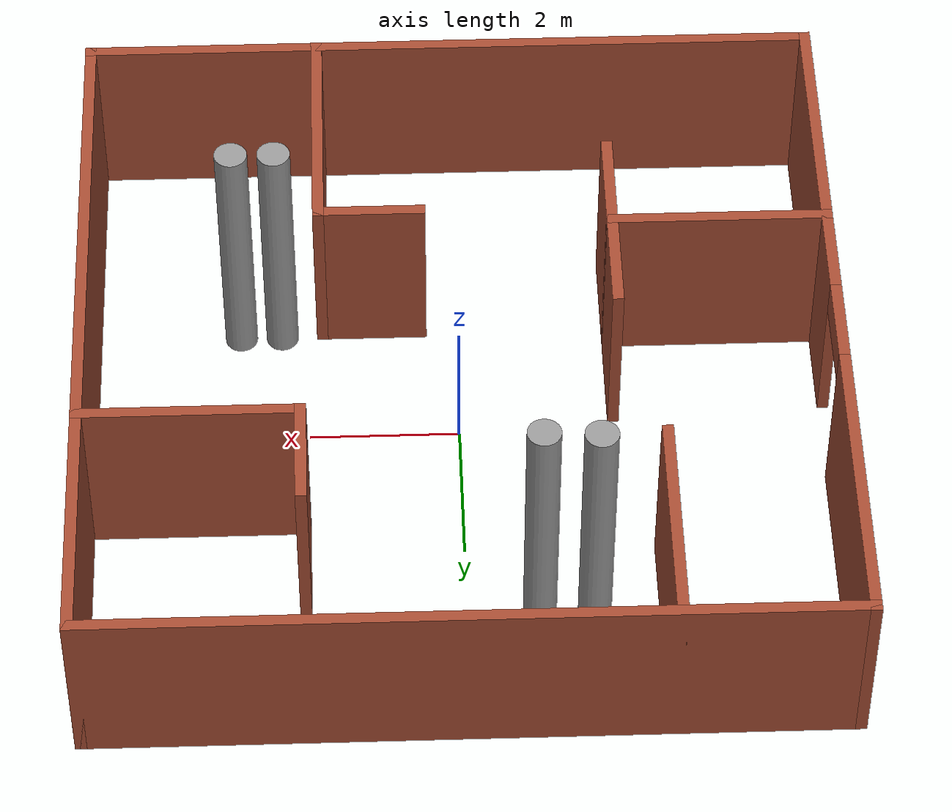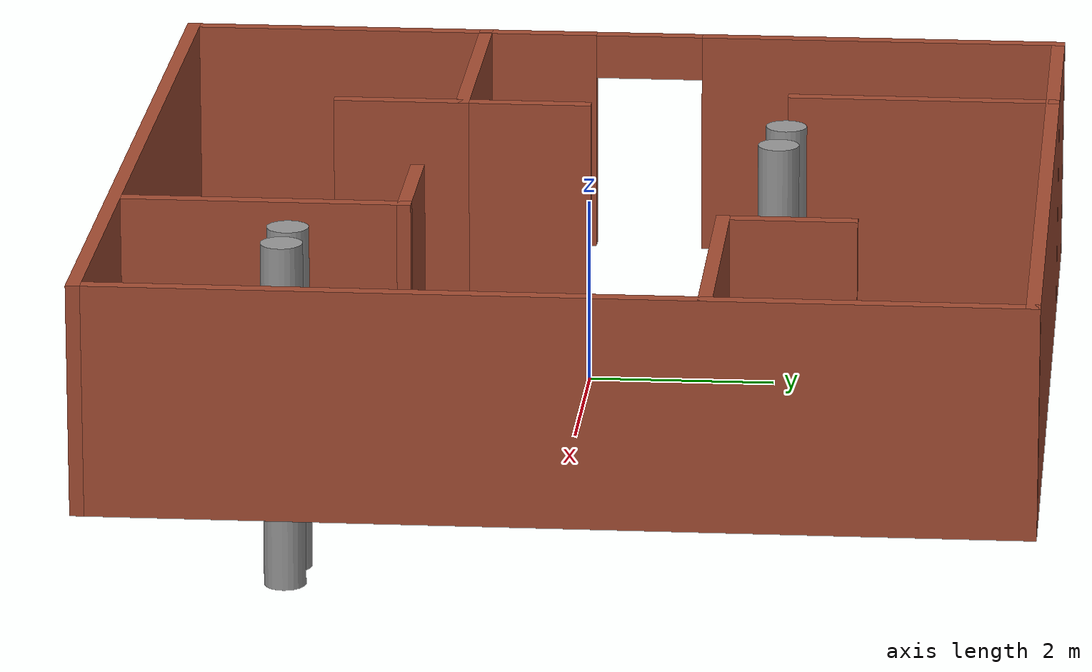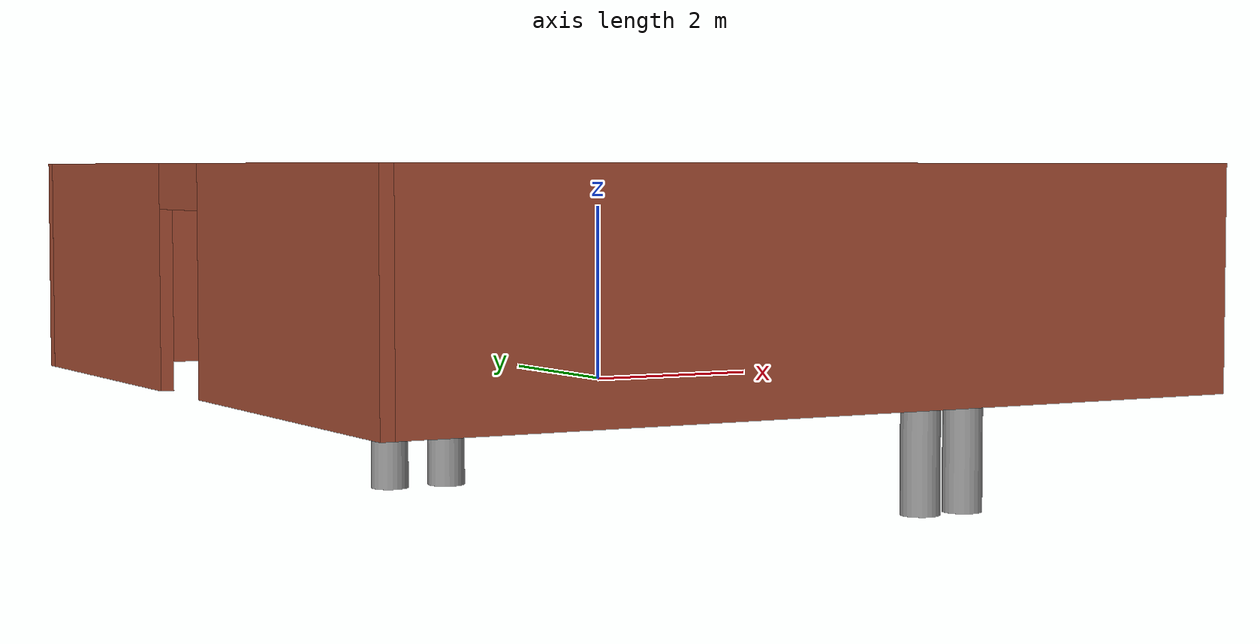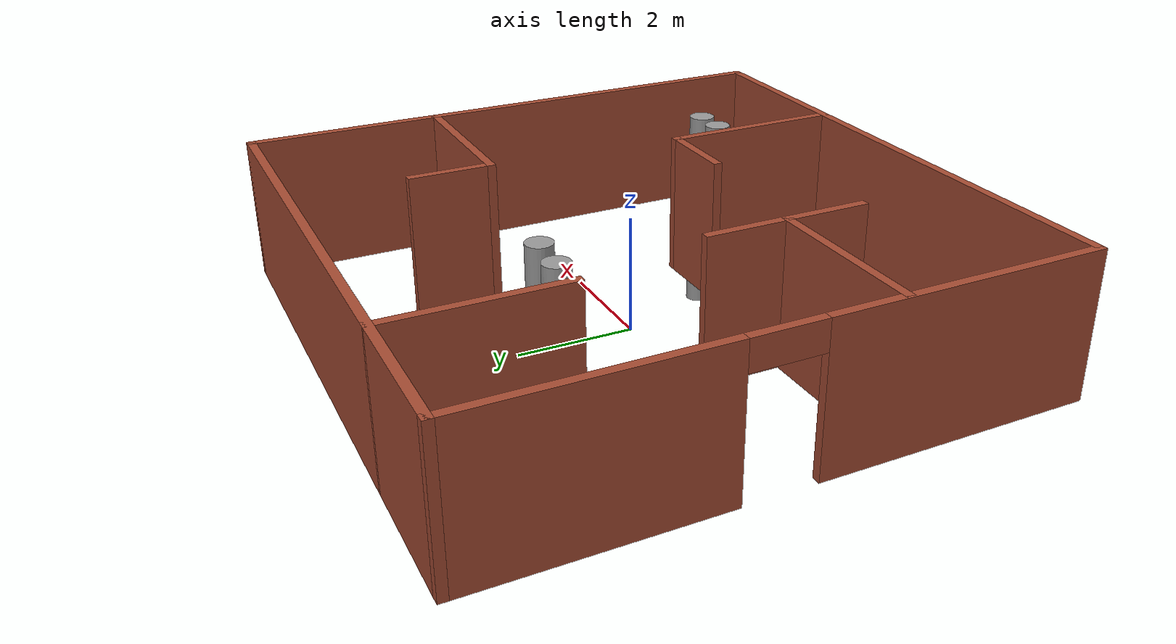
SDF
<?xml version='1.0'?>
<sdf version='1.5'>
  <model name='house_2'>
    <link name='Wall_0'>
      <pose frame=''>-4.925 0 0 0 0 -1.5708</pose>
      <self_collide>0</self_collide>
      <kinematic>0</kinematic>
      <visual name='Wall_0_Visual_0'>
        <pose frame=''>-2.94608 0 1.25 0 -0 0</pose>
        <geometry>
          <box>
            <size>4.10785 0.15 2.5</size>
          </box>
        </geometry>
        <material>
          <script>
            <uri>file://media/materials/scripts/gazebo.material</uri>
            <name>Gazebo/Bricks</name>
          </script>
          <ambient>1 1 1 1</ambient>
          <diffuse>1 1 1 1</diffuse>
          <specular>0.2 0.2 0.2 1</specular>
          <emissive>0 0 0 1</emissive>
          <shader type='pixel'/>
        </material>
        <cast_shadows>1</cast_shadows>
        <transparency>0</transparency>
      </visual>
      <visual name='Wall_0_Visual_1'>
        <pose frame=''>2.65392 0 1.25 0 -0 0</pose>
        <geometry>
          <box>
            <size>4.69215 0.15 2.5</size>
          </box>
        </geometry>
        <material>
          <script>
            <uri>file://media/materials/scripts/gazebo.material</uri>
            <name>Gazebo/Bricks</name>
          </script>
          <ambient>1 1 1 1</ambient>
          <diffuse>1 1 1 1</diffuse>
          <specular>0.2 0.2 0.2 1</specular>
          <emissive>0 0 0 1</emissive>
          <shader type='pixel'/>
        </material>
        <cast_shadows>1</cast_shadows>
        <transparency>0</transparency>
      </visual>
      <visual name='Wall_0_Visual_2'>
        <pose frame=''>-0.292154 0 2.25 0 -0 0</pose>
        <geometry>
          <box>
            <size>1.2 0.15 0.5</size>
          </box>
        </geometry>
        <material>
          <script>
            <uri>file://media/materials/scripts/gazebo.material</uri>
            <name>Gazebo/Bricks</name>
          </script>
          <ambient>1 1 1 1</ambient>
          <diffuse>1 1 1 1</diffuse>
          <specular>0.2 0.2 0.2 1</specular>
          <emissive>0 0 0 1</emissive>
          <shader type='pixel'/>
        </material>
        <cast_shadows>1</cast_shadows>
        <transparency>0</transparency>
      </visual>
      <collision name='Wall_0_Collision_0'>
        <laser_retro>0</laser_retro>
        <max_contacts>10</max_contacts>
        <pose frame=''>-2.94608 0 1.25 0 -0 0</pose>
        <geometry>
          <box>
            <size>4.10785 0.15 2.5</size>
          </box>
        </geometry>
        <surface>
          <friction>
            <ode>
              <mu>1</mu>
              <mu2>1</mu2>
              <fdir1>0 0 0</fdir1>
              <slip1>0</slip1>
              <slip2>0</slip2>
            </ode>
          </friction>
          <bounce>
            <restitution_coefficient>0</restitution_coefficient>
            <threshold>1e+06</threshold>
          </bounce>
          <contact>
            <collide_without_contact>0</collide_without_contact>
            <collide_without_contact_bitmask>1</collide_without_contact_bitmask>
            <collide_bitmask>1</collide_bitmask>
            <ode>
              <soft_cfm>0</soft_cfm>
              <soft_erp>0.2</soft_erp>
              <kp>1e+13</kp>
              <kd>1</kd>
              <max_vel>0.01</max_vel>
              <min_depth>0</min_depth>
            </ode>
            <bullet>
              <split_impulse>1</split_impulse>
              <split_impulse_penetration_threshold>-0.01</split_impulse_penetration_threshold>
              <soft_cfm>0</soft_cfm>
              <soft_erp>0.2</soft_erp>
              <kp>1e+13</kp>
              <kd>1</kd>
            </bullet>
          </contact>
        </surface>
      </collision>
      <collision name='Wall_0_Collision_1'>
        <laser_retro>0</laser_retro>
        <max_contacts>10</max_contacts>
        <pose frame=''>2.65392 0 1.25 0 -0 0</pose>
        <geometry>
          <box>
            <size>4.69215 0.15 2.5</size>
          </box>
        </geometry>
        <surface>
          <friction>
            <ode>
              <mu>1</mu>
              <mu2>1</mu2>
              <fdir1>0 0 0</fdir1>
              <slip1>0</slip1>
              <slip2>0</slip2>
            </ode>
          </friction>
          <bounce>
            <restitution_coefficient>0</restitution_coefficient>
            <threshold>1e+06</threshold>
          </bounce>
          <contact>
            <collide_without_contact>0</collide_without_contact>
            <collide_without_contact_bitmask>1</collide_without_contact_bitmask>
            <collide_bitmask>1</collide_bitmask>
            <ode>
              <soft_cfm>0</soft_cfm>
              <soft_erp>0.2</soft_erp>
              <kp>1e+13</kp>
              <kd>1</kd>
              <max_vel>0.01</max_vel>
              <min_depth>0</min_depth>
            </ode>
            <bullet>
              <split_impulse>1</split_impulse>
              <split_impulse_penetration_threshold>-0.01</split_impulse_penetration_threshold>
              <soft_cfm>0</soft_cfm>
              <soft_erp>0.2</soft_erp>
              <kp>1e+13</kp>
              <kd>1</kd>
            </bullet>
          </contact>
        </surface>
      </collision>
      <collision name='Wall_0_Collision_2'>
        <laser_retro>0</laser_retro>
        <max_contacts>10</max_contacts>
        <pose frame=''>-0.292154 0 2.25 0 -0 0</pose>
        <geometry>
          <box>
            <size>1.2 0.15 0.5</size>
          </box>
        </geometry>
        <surface>
          <friction>
            <ode>
              <mu>1</mu>
              <mu2>1</mu2>
              <fdir1>0 0 0</fdir1>
              <slip1>0</slip1>
              <slip2>0</slip2>
            </ode>
          </friction>
          <bounce>
            <restitution_coefficient>0</restitution_coefficient>
            <threshold>1e+06</threshold>
          </bounce>
          <contact>
            <collide_without_contact>0</collide_without_contact>
            <collide_without_contact_bitmask>1</collide_without_contact_bitmask>
            <collide_bitmask>1</collide_bitmask>
            <ode>
              <soft_cfm>0</soft_cfm>
              <soft_erp>0.2</soft_erp>
              <kp>1e+13</kp>
              <kd>1</kd>
              <max_vel>0.01</max_vel>
              <min_depth>0</min_depth>
            </ode>
            <bullet>
              <split_impulse>1</split_impulse>
              <split_impulse_penetration_threshold>-0.01</split_impulse_penetration_threshold>
              <soft_cfm>0</soft_cfm>
              <soft_erp>0.2</soft_erp>
              <kp>1e+13</kp>
              <kd>1</kd>
            </bullet>
          </contact>
        </surface>
      </collision>
    </link>
    <link name='Wall_14'>
      <pose frame=''>-2.575 3.5 0 0 0 -1.5708</pose>
      <self_collide>0</self_collide>
      <kinematic>0</kinematic>
      <visual name='Wall_14_Visual'>
        <pose frame=''>0 0 1.25 0 -0 0</pose>
        <geometry>
          <box>
            <size>3 0.15 2.5</size>
          </box>
        </geometry>
        <material>
          <script>
            <uri>file://media/materials/scripts/gazebo.material</uri>
            <name>Gazebo/Bricks</name>
          </script>
          <ambient>1 1 1 1</ambient>
          <diffuse>1 1 1 1</diffuse>
          <specular>0.2 0.2 0.2 1</specular>
          <emissive>0 0 0 1</emissive>
          <shader type='pixel'/>
        </material>
        <cast_shadows>1</cast_shadows>
        <transparency>0</transparency>
      </visual>
      <collision name='Wall_14_Collision'>
        <laser_retro>0</laser_retro>
        <max_contacts>10</max_contacts>
        <pose frame=''>0 0 1.25 0 -0 0</pose>
        <geometry>
          <box>
            <size>3 0.15 2.5</size>
          </box>
        </geometry>
        <surface>
          <friction>
            <ode>
              <mu>1</mu>
              <mu2>1</mu2>
              <fdir1>0 0 0</fdir1>
              <slip1>0</slip1>
              <slip2>0</slip2>
            </ode>
          </friction>
          <bounce>
            <restitution_coefficient>0</restitution_coefficient>
            <threshold>1e+06</threshold>
          </bounce>
          <contact>
            <collide_without_contact>0</collide_without_contact>
            <collide_without_contact_bitmask>1</collide_without_contact_bitmask>
            <collide_bitmask>1</collide_bitmask>
            <ode>
              <soft_cfm>0</soft_cfm>
              <soft_erp>0.2</soft_erp>
              <kp>1e+13</kp>
              <kd>1</kd>
              <max_vel>0.01</max_vel>
              <min_depth>0</min_depth>
            </ode>
            <bullet>
              <split_impulse>1</split_impulse>
              <split_impulse_penetration_threshold>-0.01</split_impulse_penetration_threshold>
              <soft_cfm>0</soft_cfm>
              <soft_erp>0.2</soft_erp>
              <kp>1e+13</kp>
              <kd>1</kd>
            </bullet>
          </contact>
        </surface>
      </collision>
    </link>
    <link name='Wall_17'>
      <pose frame=''>3.5 1.575 0 0 -0 3.14159</pose>
      <self_collide>0</self_collide>
      <kinematic>0</kinematic>
      <visual name='Wall_17_Visual'>
        <pose frame=''>0 0 1.25 0 -0 0</pose>
        <geometry>
          <box>
            <size>3 0.15 2.5</size>
          </box>
        </geometry>
        <material>
          <script>
            <uri>file://media/materials/scripts/gazebo.material</uri>
            <name>Gazebo/Bricks</name>
          </script>
          <ambient>1 1 1 1</ambient>
          <diffuse>1 1 1 1</diffuse>
          <specular>0.2 0.2 0.2 1</specular>
          <emissive>0 0 0 1</emissive>
          <shader type='pixel'/>
        </material>
        <cast_shadows>1</cast_shadows>
        <transparency>0</transparency>
      </visual>
      <collision name='Wall_17_Collision'>
        <laser_retro>0</laser_retro>
        <max_contacts>10</max_contacts>
        <pose frame=''>0 0 1.25 0 -0 0</pose>
        <geometry>
          <box>
            <size>3 0.15 2.5</size>
          </box>
        </geometry>
        <surface>
          <friction>
            <ode>
              <mu>1</mu>
              <mu2>1</mu2>
              <fdir1>0 0 0</fdir1>
              <slip1>0</slip1>
              <slip2>0</slip2>
            </ode>
          </friction>
          <bounce>
            <restitution_coefficient>0</restitution_coefficient>
            <threshold>1e+06</threshold>
          </bounce>
          <contact>
            <collide_without_contact>0</collide_without_contact>
            <collide_without_contact_bitmask>1</collide_without_contact_bitmask>
            <collide_bitmask>1</collide_bitmask>
            <ode>
              <soft_cfm>0</soft_cfm>
              <soft_erp>0.2</soft_erp>
              <kp>1e+13</kp>
              <kd>1</kd>
              <max_vel>0.01</max_vel>
              <min_depth>0</min_depth>
            </ode>
            <bullet>
              <split_impulse>1</split_impulse>
              <split_impulse_penetration_threshold>-0.01</split_impulse_penetration_threshold>
              <soft_cfm>0</soft_cfm>
              <soft_erp>0.2</soft_erp>
              <kp>1e+13</kp>
              <kd>1</kd>
            </bullet>
          </contact>
        </surface>
      </collision>
    </link>
    <link name='Wall_2'>
      <pose frame=''>0 4.925 0 0 -0 0</pose>
      <self_collide>0</self_collide>
      <kinematic>0</kinematic>
      <visual name='Wall_2_Visual'>
        <pose frame=''>0 0 1.25 0 -0 0</pose>
        <geometry>
          <box>
            <size>10 0.15 2.5</size>
          </box>
        </geometry>
        <material>
          <script>
            <uri>file://media/materials/scripts/gazebo.material</uri>
            <name>Gazebo/Bricks</name>
          </script>
          <ambient>1 1 1 1</ambient>
          <diffuse>1 1 1 1</diffuse>
          <specular>0.2 0.2 0.2 1</specular>
          <emissive>0 0 0 1</emissive>
          <shader type='pixel'/>
        </material>
        <cast_shadows>1</cast_shadows>
        <transparency>0</transparency>
      </visual>
      <collision name='Wall_2_Collision'>
        <laser_retro>0</laser_retro>
        <max_contacts>10</max_contacts>
        <pose frame=''>0 0 1.25 0 -0 0</pose>
        <geometry>
          <box>
            <size>10 0.15 2.5</size>
          </box>
        </geometry>
        <surface>
          <friction>
            <ode>
              <mu>1</mu>
              <mu2>1</mu2>
              <fdir1>0 0 0</fdir1>
              <slip1>0</slip1>
              <slip2>0</slip2>
            </ode>
          </friction>
          <bounce>
            <restitution_coefficient>0</restitution_coefficient>
            <threshold>1e+06</threshold>
          </bounce>
          <contact>
            <collide_without_contact>0</collide_without_contact>
            <collide_without_contact_bitmask>1</collide_without_contact_bitmask>
            <collide_bitmask>1</collide_bitmask>
            <ode>
              <soft_cfm>0</soft_cfm>
              <soft_erp>0.2</soft_erp>
              <kp>1e+13</kp>
              <kd>1</kd>
              <max_vel>0.01</max_vel>
              <min_depth>0</min_depth>
            </ode>
            <bullet>
              <split_impulse>1</split_impulse>
              <split_impulse_penetration_threshold>-0.01</split_impulse_penetration_threshold>
              <soft_cfm>0</soft_cfm>
              <soft_erp>0.2</soft_erp>
              <kp>1e+13</kp>
              <kd>1</kd>
            </bullet>
          </contact>
        </surface>
      </collision>
    </link>
    <link name='Wall_23'>
      <pose frame=''>-3.5 -1.575 0 0 -0 0</pose>
      <self_collide>0</self_collide>
      <kinematic>0</kinematic>
      <visual name='Wall_23_Visual'>
        <pose frame=''>0 0 1.25 0 -0 0</pose>
        <geometry>
          <box>
            <size>3 0.15 2.5</size>
          </box>
        </geometry>
        <material>
          <script>
            <uri>file://media/materials/scripts/gazebo.material</uri>
            <name>Gazebo/Bricks</name>
          </script>
          <ambient>1 1 1 1</ambient>
          <diffuse>1 1 1 1</diffuse>
          <specular>0.2 0.2 0.2 1</specular>
          <emissive>0 0 0 1</emissive>
          <shader type='pixel'/>
        </material>
        <cast_shadows>1</cast_shadows>
        <transparency>0</transparency>
      </visual>
      <collision name='Wall_23_Collision'>
        <laser_retro>0</laser_retro>
        <max_contacts>10</max_contacts>
        <pose frame=''>0 0 1.25 0 -0 0</pose>
        <geometry>
          <box>
            <size>3 0.15 2.5</size>
          </box>
        </geometry>
        <surface>
          <friction>
            <ode>
              <mu>1</mu>
              <mu2>1</mu2>
              <fdir1>0 0 0</fdir1>
              <slip1>0</slip1>
              <slip2>0</slip2>
            </ode>
          </friction>
          <bounce>
            <restitution_coefficient>0</restitution_coefficient>
            <threshold>1e+06</threshold>
          </bounce>
          <contact>
            <collide_without_contact>0</collide_without_contact>
            <collide_without_contact_bitmask>1</collide_without_contact_bitmask>
            <collide_bitmask>1</collide_bitmask>
            <ode>
              <soft_cfm>0</soft_cfm>
              <soft_erp>0.2</soft_erp>
              <kp>1e+13</kp>
              <kd>1</kd>
              <max_vel>0.01</max_vel>
              <min_depth>0</min_depth>
            </ode>
            <bullet>
              <split_impulse>1</split_impulse>
              <split_impulse_penetration_threshold>-0.01</split_impulse_penetration_threshold>
              <soft_cfm>0</soft_cfm>
              <soft_erp>0.2</soft_erp>
              <kp>1e+13</kp>
              <kd>1</kd>
            </bullet>
          </contact>
        </surface>
      </collision>
    </link>
    <link name='Wall_25'>
      <pose frame=''>2.075 2.25 0 0 -0 1.5708</pose>
      <self_collide>0</self_collide>
      <kinematic>0</kinematic>
      <visual name='Wall_25_Visual'>
        <pose frame=''>0 0 1.25 0 -0 0</pose>
        <geometry>
          <box>
            <size>1.5 0.15 2.5</size>
          </box>
        </geometry>
        <material>
          <script>
            <uri>file://media/materials/scripts/gazebo.material</uri>
            <name>Gazebo/Bricks</name>
          </script>
          <ambient>1 1 1 1</ambient>
          <diffuse>1 1 1 1</diffuse>
          <specular>0.2 0.2 0.2 1</specular>
          <emissive>0 0 0 1</emissive>
          <shader type='pixel'/>
        </material>
        <cast_shadows>1</cast_shadows>
        <transparency>0</transparency>
      </visual>
      <collision name='Wall_25_Collision'>
        <laser_retro>0</laser_retro>
        <max_contacts>10</max_contacts>
        <pose frame=''>0 0 1.25 0 -0 0</pose>
        <geometry>
          <box>
            <size>1.5 0.15 2.5</size>
          </box>
        </geometry>
        <surface>
          <friction>
            <ode>
              <mu>1</mu>
              <mu2>1</mu2>
              <fdir1>0 0 0</fdir1>
              <slip1>0</slip1>
              <slip2>0</slip2>
            </ode>
          </friction>
          <bounce>
            <restitution_coefficient>0</restitution_coefficient>
            <threshold>1e+06</threshold>
          </bounce>
          <contact>
            <collide_without_contact>0</collide_without_contact>
            <collide_without_contact_bitmask>1</collide_without_contact_bitmask>
            <collide_bitmask>1</collide_bitmask>
            <ode>
              <soft_cfm>0</soft_cfm>
              <soft_erp>0.2</soft_erp>
              <kp>1e+13</kp>
              <kd>1</kd>
              <max_vel>0.01</max_vel>
              <min_depth>0</min_depth>
            </ode>
            <bullet>
              <split_impulse>1</split_impulse>
              <split_impulse_penetration_threshold>-0.01</split_impulse_penetration_threshold>
              <soft_cfm>0</soft_cfm>
              <soft_erp>0.2</soft_erp>
              <kp>1e+13</kp>
              <kd>1</kd>
            </bullet>
          </contact>
        </surface>
      </collision>
    </link>
    <link name='Wall_27'>
      <pose frame=''>-2.075 -2.25 0 0 0 -1.5708</pose>
      <self_collide>0</self_collide>
      <kinematic>0</kinematic>
      <visual name='Wall_27_Visual'>
        <pose frame=''>0 0 1.25 0 -0 0</pose>
        <geometry>
          <box>
            <size>1.5 0.15 2.5</size>
          </box>
        </geometry>
        <material>
          <script>
            <uri>file://media/materials/scripts/gazebo.material</uri>
            <name>Gazebo/Bricks</name>
          </script>
          <ambient>1 1 1 1</ambient>
          <diffuse>1 1 1 1</diffuse>
          <specular>0.2 0.2 0.2 1</specular>
          <emissive>0 0 0 1</emissive>
          <shader type='pixel'/>
        </material>
        <cast_shadows>1</cast_shadows>
        <transparency>0</transparency>
      </visual>
      <collision name='Wall_27_Collision'>
        <laser_retro>0</laser_retro>
        <max_contacts>10</max_contacts>
        <pose frame=''>0 0 1.25 0 -0 0</pose>
        <geometry>
          <box>
            <size>1.5 0.15 2.5</size>
          </box>
        </geometry>
        <surface>
          <friction>
            <ode>
              <mu>1</mu>
              <mu2>1</mu2>
              <fdir1>0 0 0</fdir1>
              <slip1>0</slip1>
              <slip2>0</slip2>
            </ode>
          </friction>
          <bounce>
            <restitution_coefficient>0</restitution_coefficient>
            <threshold>1e+06</threshold>
          </bounce>
          <contact>
            <collide_without_contact>0</collide_without_contact>
            <collide_without_contact_bitmask>1</collide_without_contact_bitmask>
            <collide_bitmask>1</collide_bitmask>
            <ode>
              <soft_cfm>0</soft_cfm>
              <soft_erp>0.2</soft_erp>
              <kp>1e+13</kp>
              <kd>1</kd>
              <max_vel>0.01</max_vel>
              <min_depth>0</min_depth>
            </ode>
            <bullet>
              <split_impulse>1</split_impulse>
              <split_impulse_penetration_threshold>-0.01</split_impulse_penetration_threshold>
              <soft_cfm>0</soft_cfm>
              <soft_erp>0.2</soft_erp>
              <kp>1e+13</kp>
              <kd>1</kd>
            </bullet>
          </contact>
        </surface>
      </collision>
    </link>
    <link name='Wall_3'>
      <pose frame=''>4.925 0 0 0 0 -1.5708</pose>
      <self_collide>0</self_collide>
      <kinematic>0</kinematic>
      <visual name='Wall_3_Visual'>
        <pose frame=''>0 0 1.25 0 -0 0</pose>
        <geometry>
          <box>
            <size>10 0.15 2.5</size>
          </box>
        </geometry>
        <material>
          <script>
            <uri>file://media/materials/scripts/gazebo.material</uri>
            <name>Gazebo/Bricks</name>
          </script>
          <ambient>1 1 1 1</ambient>
          <diffuse>1 1 1 1</diffuse>
          <specular>0.2 0.2 0.2 1</specular>
          <emissive>0 0 0 1</emissive>
          <shader type='pixel'/>
        </material>
        <cast_shadows>1</cast_shadows>
        <transparency>0</transparency>
      </visual>
      <collision name='Wall_3_Collision'>
        <laser_retro>0</laser_retro>
        <max_contacts>10</max_contacts>
        <pose frame=''>0 0 1.25 0 -0 0</pose>
        <geometry>
          <box>
            <size>10 0.15 2.5</size>
          </box>
        </geometry>
        <surface>
          <friction>
            <ode>
              <mu>1</mu>
              <mu2>1</mu2>
              <fdir1>0 0 0</fdir1>
              <slip1>0</slip1>
              <slip2>0</slip2>
            </ode>
          </friction>
          <bounce>
            <restitution_coefficient>0</restitution_coefficient>
            <threshold>1e+06</threshold>
          </bounce>
          <contact>
            <collide_without_contact>0</collide_without_contact>
            <collide_without_contact_bitmask>1</collide_without_contact_bitmask>
            <collide_bitmask>1</collide_bitmask>
            <ode>
              <soft_cfm>0</soft_cfm>
              <soft_erp>0.2</soft_erp>
              <kp>1e+13</kp>
              <kd>1</kd>
              <max_vel>0.01</max_vel>
              <min_depth>0</min_depth>
            </ode>
            <bullet>
              <split_impulse>1</split_impulse>
              <split_impulse_penetration_threshold>-0.01</split_impulse_penetration_threshold>
              <soft_cfm>0</soft_cfm>
              <soft_erp>0.2</soft_erp>
              <kp>1e+13</kp>
              <kd>1</kd>
            </bullet>
          </contact>
        </surface>
      </collision>
    </link>
    <link name='Wall_36'>
      <pose frame=''>-2.075 -0.9 0 0 -0 1.5708</pose>
      <self_collide>0</self_collide>
      <kinematic>0</kinematic>
      <visual name='Wall_36_Visual'>
        <pose frame=''>0 0 1.25 0 -0 0</pose>
        <geometry>
          <box>
            <size>1.5 0.15 2.5</size>
          </box>
        </geometry>
        <material>
          <script>
            <uri>file://media/materials/scripts/gazebo.material</uri>
            <name>Gazebo/Bricks</name>
          </script>
          <ambient>1 1 1 1</ambient>
          <diffuse>1 1 1 1</diffuse>
          <specular>0.2 0.2 0.2 1</specular>
          <emissive>0 0 0 1</emissive>
          <shader type='pixel'/>
        </material>
        <cast_shadows>1</cast_shadows>
        <transparency>0</transparency>
      </visual>
      <collision name='Wall_36_Collision'>
        <laser_retro>0</laser_retro>
        <max_contacts>10</max_contacts>
        <pose frame=''>0 0 1.25 0 -0 0</pose>
        <geometry>
          <box>
            <size>1.5 0.15 2.5</size>
          </box>
        </geometry>
        <surface>
          <friction>
            <ode>
              <mu>1</mu>
              <mu2>1</mu2>
              <fdir1>0 0 0</fdir1>
              <slip1>0</slip1>
              <slip2>0</slip2>
            </ode>
          </friction>
          <bounce>
            <restitution_coefficient>0</restitution_coefficient>
            <threshold>1e+06</threshold>
          </bounce>
          <contact>
            <collide_without_contact>0</collide_without_contact>
            <collide_without_contact_bitmask>1</collide_without_contact_bitmask>
            <collide_bitmask>1</collide_bitmask>
            <ode>
              <soft_cfm>0</soft_cfm>
              <soft_erp>0.2</soft_erp>
              <kp>1e+13</kp>
              <kd>1</kd>
              <max_vel>0.01</max_vel>
              <min_depth>0</min_depth>
            </ode>
            <bullet>
              <split_impulse>1</split_impulse>
              <split_impulse_penetration_threshold>-0.01</split_impulse_penetration_threshold>
              <soft_cfm>0</soft_cfm>
              <soft_erp>0.2</soft_erp>
              <kp>1e+13</kp>
              <kd>1</kd>
            </bullet>
          </contact>
        </surface>
      </collision>
    </link>
    <link name='Wall_4'>
      <pose frame=''>0 -4.925 0 0 -0 3.14159</pose>
      <self_collide>0</self_collide>
      <kinematic>0</kinematic>
      <visual name='Wall_4_Visual'>
        <pose frame=''>0 0 1.25 0 -0 0</pose>
        <geometry>
          <box>
            <size>10 0.15 2.5</size>
          </box>
        </geometry>
        <material>
          <script>
            <uri>file://media/materials/scripts/gazebo.material</uri>
            <name>Gazebo/Bricks</name>
          </script>
          <ambient>1 1 1 1</ambient>
          <diffuse>1 1 1 1</diffuse>
          <specular>0.2 0.2 0.2 1</specular>
          <emissive>0 0 0 1</emissive>
          <shader type='pixel'/>
        </material>
        <cast_shadows>1</cast_shadows>
        <transparency>0</transparency>
      </visual>
      <collision name='Wall_4_Collision'>
        <laser_retro>0</laser_retro>
        <max_contacts>10</max_contacts>
        <pose frame=''>0 0 1.25 0 -0 0</pose>
        <geometry>
          <box>
            <size>10 0.15 2.5</size>
          </box>
        </geometry>
        <surface>
          <friction>
            <ode>
              <mu>1</mu>
              <mu2>1</mu2>
              <fdir1>0 0 0</fdir1>
              <slip1>0</slip1>
              <slip2>0</slip2>
            </ode>
          </friction>
          <bounce>
            <restitution_coefficient>0</restitution_coefficient>
            <threshold>1e+06</threshold>
          </bounce>
          <contact>
            <collide_without_contact>0</collide_without_contact>
            <collide_without_contact_bitmask>1</collide_without_contact_bitmask>
            <collide_bitmask>1</collide_bitmask>
            <ode>
              <soft_cfm>0</soft_cfm>
              <soft_erp>0.2</soft_erp>
              <kp>1e+13</kp>
              <kd>1</kd>
              <max_vel>0.01</max_vel>
              <min_depth>0</min_depth>
            </ode>
            <bullet>
              <split_impulse>1</split_impulse>
              <split_impulse_penetration_threshold>-0.01</split_impulse_penetration_threshold>
              <soft_cfm>0</soft_cfm>
              <soft_erp>0.2</soft_erp>
              <kp>1e+13</kp>
              <kd>1</kd>
            </bullet>
          </contact>
        </surface>
      </collision>
    </link>
    <link name='Wall_50'>
      <pose frame=''>1.825 -3.375 0 0 -0 1.5708</pose>
      <self_collide>0</self_collide>
      <kinematic>0</kinematic>
      <visual name='Wall_50_Visual'>
        <pose frame=''>0 0 1.25 0 -0 0</pose>
        <geometry>
          <box>
            <size>3.25 0.15 2.5</size>
          </box>
        </geometry>
        <material>
          <script>
            <uri>file://media/materials/scripts/gazebo.material</uri>
            <name>Gazebo/Bricks</name>
          </script>
          <ambient>1 1 1 1</ambient>
          <diffuse>1 1 1 1</diffuse>
          <specular>0.2 0.2 0.2 1</specular>
          <emissive>0 0 0 1</emissive>
          <shader type='pixel'/>
        </material>
        <cast_shadows>1</cast_shadows>
        <transparency>0</transparency>
      </visual>
      <collision name='Wall_50_Collision'>
        <laser_retro>0</laser_retro>
        <max_contacts>10</max_contacts>
        <pose frame=''>0 0 1.25 0 -0 0</pose>
        <geometry>
          <box>
            <size>3.25 0.15 2.5</size>
          </box>
        </geometry>
        <surface>
          <friction>
            <ode>
              <mu>1</mu>
              <mu2>1</mu2>
              <fdir1>0 0 0</fdir1>
              <slip1>0</slip1>
              <slip2>0</slip2>
            </ode>
          </friction>
          <bounce>
            <restitution_coefficient>0</restitution_coefficient>
            <threshold>1e+06</threshold>
          </bounce>
          <contact>
            <collide_without_contact>0</collide_without_contact>
            <collide_without_contact_bitmask>1</collide_without_contact_bitmask>
            <collide_bitmask>1</collide_bitmask>
            <ode>
              <soft_cfm>0</soft_cfm>
              <soft_erp>0.2</soft_erp>
              <kp>1e+13</kp>
              <kd>1</kd>
              <max_vel>0.01</max_vel>
              <min_depth>0</min_depth>
            </ode>
            <bullet>
              <split_impulse>1</split_impulse>
              <split_impulse_penetration_threshold>-0.01</split_impulse_penetration_threshold>
              <soft_cfm>0</soft_cfm>
              <soft_erp>0.2</soft_erp>
              <kp>1e+13</kp>
              <kd>1</kd>
            </bullet>
          </contact>
        </surface>
      </collision>
    </link>
    <link name='Wall_54'>
      <pose frame=''>1.15 -1.825 0 0 -0 3.14159</pose>
      <self_collide>0</self_collide>
      <kinematic>0</kinematic>
      <visual name='Wall_54_Visual'>
        <pose frame=''>0 0 1.25 0 -0 0</pose>
        <geometry>
          <box>
            <size>1.5 0.15 2.5</size>
          </box>
        </geometry>
        <material>
          <script>
            <uri>file://media/materials/scripts/gazebo.material</uri>
            <name>Gazebo/Bricks</name>
          </script>
          <ambient>1 1 1 1</ambient>
          <diffuse>1 1 1 1</diffuse>
          <specular>0.2 0.2 0.2 1</specular>
          <emissive>0 0 0 1</emissive>
          <shader type='pixel'/>
        </material>
        <cast_shadows>1</cast_shadows>
        <transparency>0</transparency>
      </visual>
      <collision name='Wall_54_Collision'>
        <laser_retro>0</laser_retro>
        <max_contacts>10</max_contacts>
        <pose frame=''>0 0 1.25 0 -0 0</pose>
        <geometry>
          <box>
            <size>1.5 0.15 2.5</size>
          </box>
        </geometry>
        <surface>
          <friction>
            <ode>
              <mu>1</mu>
              <mu2>1</mu2>
              <fdir1>0 0 0</fdir1>
              <slip1>0</slip1>
              <slip2>0</slip2>
            </ode>
          </friction>
          <bounce>
            <restitution_coefficient>0</restitution_coefficient>
            <threshold>1e+06</threshold>
          </bounce>
          <contact>
            <collide_without_contact>0</collide_without_contact>
            <collide_without_contact_bitmask>1</collide_without_contact_bitmask>
            <collide_bitmask>1</collide_bitmask>
            <ode>
              <soft_cfm>0</soft_cfm>
              <soft_erp>0.2</soft_erp>
              <kp>1e+13</kp>
              <kd>1</kd>
              <max_vel>0.01</max_vel>
              <min_depth>0</min_depth>
            </ode>
            <bullet>
              <split_impulse>1</split_impulse>
              <split_impulse_penetration_threshold>-0.01</split_impulse_penetration_threshold>
              <soft_cfm>0</soft_cfm>
              <soft_erp>0.2</soft_erp>
              <kp>1e+13</kp>
              <kd>1</kd>
            </bullet>
          </contact>
        </surface>
      </collision>
    </link>
    <link name='link_0'>
      <pose frame=''>-1.74662 2.02882 0.5 0 -0 0</pose>
      <self_collide>0</self_collide>
      <kinematic>0</kinematic>
      <visual name='visual'>
        <pose frame=''>0 0 0 0 -0 0</pose>
        <geometry>
          <cylinder>
            <radius>0.224738</radius>
            <length>3.7841</length>
          </cylinder>
        </geometry>
        <material>
          <lighting>1</lighting>
          <script>
            <uri>file://media/materials/scripts/gazebo.material</uri>
            <name>Gazebo/Grey</name>
          </script>
          <ambient>0.3 0.3 0.3 1</ambient>
          <diffuse>0.7 0.7 0.7 1</diffuse>
          <specular>0.01 0.01 0.01 1</specular>
          <emissive>0 0 0 1</emissive>
          <shader type='pixel'/>
        </material>
        <cast_shadows>1</cast_shadows>
        <transparency>0</transparency>
      </visual>
      <collision name='collision'>
        <laser_retro>0</laser_retro>
        <max_contacts>10</max_contacts>
        <pose frame=''>0 0 0 0 -0 0</pose>
        <geometry>
          <cylinder>
            <radius>0.224738</radius>
            <length>3.7841</length>
          </cylinder>
        </geometry>
        <surface>
          <friction>
            <ode>
              <mu>1</mu>
              <mu2>1</mu2>
              <fdir1>0 0 0</fdir1>
              <slip1>0</slip1>
              <slip2>0</slip2>
            </ode>
          </friction>
          <bounce>
            <restitution_coefficient>0</restitution_coefficient>
            <threshold>1e+06</threshold>
          </bounce>
          <contact>
            <collide_without_contact>0</collide_without_contact>
            <collide_without_contact_bitmask>1</collide_without_contact_bitmask>
            <collide_bitmask>1</collide_bitmask>
            <ode>
              <soft_cfm>0</soft_cfm>
              <soft_erp>0.2</soft_erp>
              <kp>1e+13</kp>
              <kd>1</kd>
              <max_vel>0.01</max_vel>
              <min_depth>0</min_depth>
            </ode>
            <bullet>
              <split_impulse>1</split_impulse>
              <split_impulse_penetration_threshold>-0.01</split_impulse_penetration_threshold>
              <soft_cfm>0</soft_cfm>
              <soft_erp>0.2</soft_erp>
              <kp>1e+13</kp>
              <kd>1</kd>
            </bullet>
          </contact>
        </surface>
      </collision>
    </link>
    <link name='link_0_clone'>
      <pose frame=''>-1.01502 1.98526 0.5 0 -0 0</pose>
      <self_collide>0</self_collide>
      <kinematic>0</kinematic>
      <visual name='ModelPreview_1::link_0_clone::visual'>
        <pose frame=''>0 0 0 0 -0 0</pose>
        <geometry>
          <cylinder>
            <radius>0.224738</radius>
            <length>3.7841</length>
          </cylinder>
        </geometry>
        <material>
          <lighting>1</lighting>
          <script>
            <uri>file://media/materials/scripts/gazebo.material</uri>
            <name>Gazebo/Grey</name>
          </script>
          <ambient>0.3 0.3 0.3 1</ambient>
          <diffuse>0.7 0.7 0.7 1</diffuse>
          <specular>0.01 0.01 0.01 1</specular>
          <emissive>0 0 0 1</emissive>
          <shader type='pixel'/>
        </material>
        <cast_shadows>1</cast_shadows>
        <transparency>0</transparency>
      </visual>
      <collision name='collision'>
        <laser_retro>0</laser_retro>
        <max_contacts>10</max_contacts>
        <pose frame=''>0 0 0 0 -0 0</pose>
        <geometry>
          <cylinder>
            <radius>0.224738</radius>
            <length>3.7841</length>
          </cylinder>
        </geometry>
        <surface>
          <friction>
            <ode>
              <mu>1</mu>
              <mu2>1</mu2>
              <fdir1>0 0 0</fdir1>
              <slip1>0</slip1>
              <slip2>0</slip2>
            </ode>
          </friction>
          <bounce>
            <restitution_coefficient>0</restitution_coefficient>
            <threshold>1e+06</threshold>
          </bounce>
          <contact>
            <collide_without_contact>0</collide_without_contact>
            <collide_without_contact_bitmask>1</collide_without_contact_bitmask>
            <collide_bitmask>1</collide_bitmask>
            <ode>
              <soft_cfm>0</soft_cfm>
              <soft_erp>0.2</soft_erp>
              <kp>1e+13</kp>
              <kd>1</kd>
              <max_vel>0.01</max_vel>
              <min_depth>0</min_depth>
            </ode>
            <bullet>
              <split_impulse>1</split_impulse>
              <split_impulse_penetration_threshold>-0.01</split_impulse_penetration_threshold>
              <soft_cfm>0</soft_cfm>
              <soft_erp>0.2</soft_erp>
              <kp>1e+13</kp>
              <kd>1</kd>
            </bullet>
          </contact>
        </surface>
      </collision>
    </link>
    <link name='link_0_clone_clone'>
      <pose frame=''>2.42043 -3 0.5 0 -0 0</pose>
      <self_collide>0</self_collide>
      <kinematic>0</kinematic>
      <visual name='ModelPreview_1::link_0_clone_clone::visual'>
        <pose frame=''>0 0 0 0 -0 0</pose>
        <geometry>
          <cylinder>
            <radius>0.224738</radius>
            <length>3.7841</length>
          </cylinder>
        </geometry>
        <material>
          <lighting>1</lighting>
          <script>
            <uri>file://media/materials/scripts/gazebo.material</uri>
            <name>Gazebo/Grey</name>
          </script>
          <ambient>0.3 0.3 0.3 1</ambient>
          <diffuse>0.7 0.7 0.7 1</diffuse>
          <specular>0.01 0.01 0.01 1</specular>
          <emissive>0 0 0 1</emissive>
          <shader type='pixel'/>
        </material>
        <cast_shadows>1</cast_shadows>
        <transparency>0</transparency>
      </visual>
      <collision name='collision'>
        <laser_retro>0</laser_retro>
        <max_contacts>10</max_contacts>
        <pose frame=''>0 0 0 0 -0 0</pose>
        <geometry>
          <cylinder>
            <radius>0.224738</radius>
            <length>3.7841</length>
          </cylinder>
        </geometry>
        <surface>
          <friction>
            <ode>
              <mu>1</mu>
              <mu2>1</mu2>
              <fdir1>0 0 0</fdir1>
              <slip1>0</slip1>
              <slip2>0</slip2>
            </ode>
          </friction>
          <bounce>
            <restitution_coefficient>0</restitution_coefficient>
            <threshold>1e+06</threshold>
          </bounce>
          <contact>
            <collide_without_contact>0</collide_without_contact>
            <collide_without_contact_bitmask>1</collide_without_contact_bitmask>
            <collide_bitmask>1</collide_bitmask>
            <ode>
              <soft_cfm>0</soft_cfm>
              <soft_erp>0.2</soft_erp>
              <kp>1e+13</kp>
              <kd>1</kd>
              <max_vel>0.01</max_vel>
              <min_depth>0</min_depth>
            </ode>
            <bullet>
              <split_impulse>1</split_impulse>
              <split_impulse_penetration_threshold>-0.01</split_impulse_penetration_threshold>
              <soft_cfm>0</soft_cfm>
              <soft_erp>0.2</soft_erp>
              <kp>1e+13</kp>
              <kd>1</kd>
            </bullet>
          </contact>
        </surface>
      </collision>
    </link>
    <link name='link_0_clone_clone_0'>
      <pose frame=''>3 -3 0.5 0 -0 0</pose>
      <self_collide>0</self_collide>
      <kinematic>0</kinematic>
      <visual name='ModelPreview_1::link_0_clone_clone_0::visual'>
        <pose frame=''>0 0 0 0 -0 0</pose>
        <geometry>
          <cylinder>
            <radius>0.224738</radius>
            <length>3.7841</length>
          </cylinder>
        </geometry>
        <material>
          <lighting>1</lighting>
          <script>
            <uri>file://media/materials/scripts/gazebo.material</uri>
            <name>Gazebo/Grey</name>
          </script>
          <ambient>0.3 0.3 0.3 1</ambient>
          <diffuse>0.7 0.7 0.7 1</diffuse>
          <specular>0.01 0.01 0.01 1</specular>
          <emissive>0 0 0 1</emissive>
          <shader type='pixel'/>
        </material>
        <cast_shadows>1</cast_shadows>
        <transparency>0</transparency>
      </visual>
      <collision name='collision'>
        <laser_retro>0</laser_retro>
        <max_contacts>10</max_contacts>
        <pose frame=''>0 0 0 0 -0 0</pose>
        <geometry>
          <cylinder>
            <radius>0.224738</radius>
            <length>3.7841</length>
          </cylinder>
        </geometry>
        <surface>
          <friction>
            <ode>
              <mu>1</mu>
              <mu2>1</mu2>
              <fdir1>0 0 0</fdir1>
              <slip1>0</slip1>
              <slip2>0</slip2>
            </ode>
          </friction>
          <bounce>
            <restitution_coefficient>0</restitution_coefficient>
            <threshold>1e+06</threshold>
          </bounce>
          <contact>
            <collide_without_contact>0</collide_without_contact>
            <collide_without_contact_bitmask>1</collide_without_contact_bitmask>
            <collide_bitmask>1</collide_bitmask>
            <ode>
              <soft_cfm>0</soft_cfm>
              <soft_erp>0.2</soft_erp>
              <kp>1e+13</kp>
              <kd>1</kd>
              <max_vel>0.01</max_vel>
              <min_depth>0</min_depth>
            </ode>
            <bullet>
              <split_impulse>1</split_impulse>
              <split_impulse_penetration_threshold>-0.01</split_impulse_penetration_threshold>
              <soft_cfm>0</soft_cfm>
              <soft_erp>0.2</soft_erp>
              <kp>1e+13</kp>
              <kd>1</kd>
            </bullet>
          </contact>
        </surface>
      </collision>
    </link>
    <static>1</static>
    <allow_auto_disable>1</allow_auto_disable>
  </model>
</sdf>
